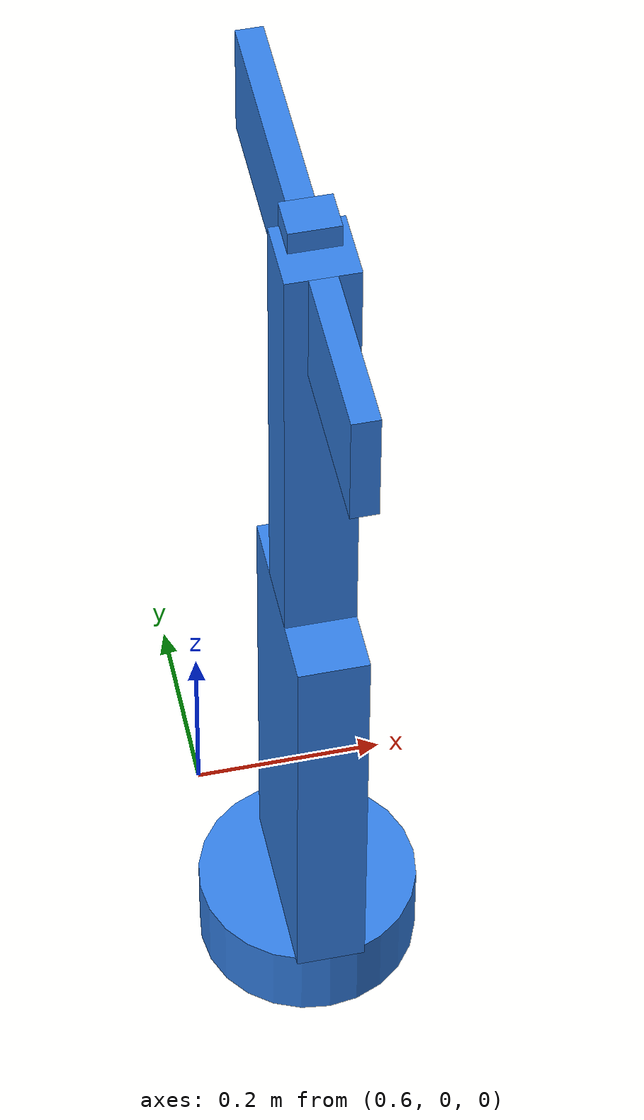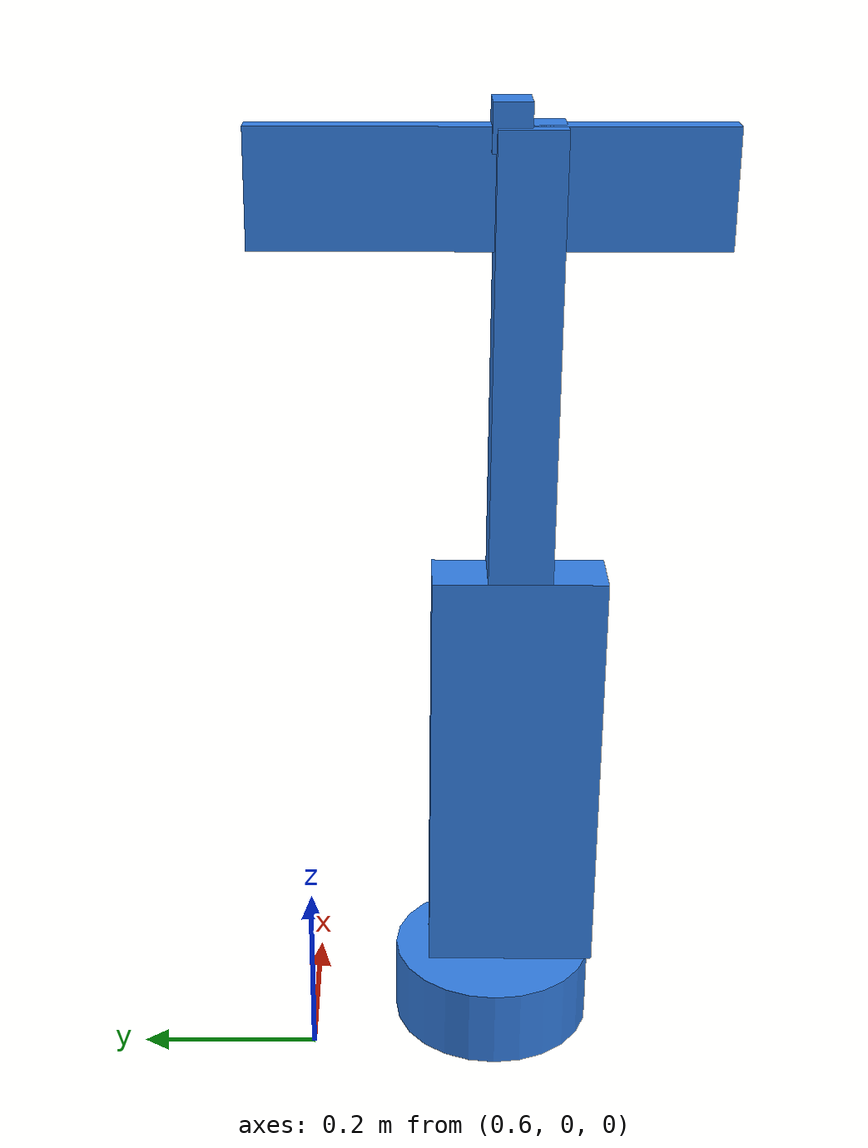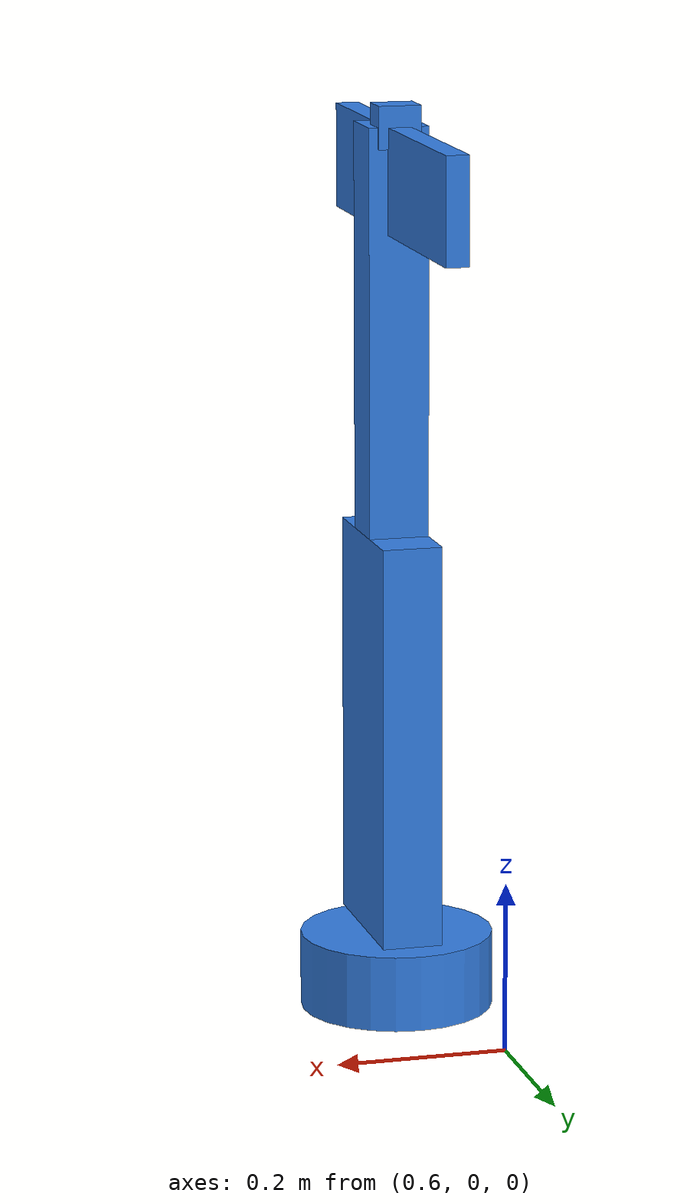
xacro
<?xml version="1.0"?>
<robot name="robot_arm" xmlns:xacro="http://www.ros.org/wiki/xacro">
  <!-- SI units. Lengths and frames follow homogeneous_transform.h. -->
  <!-- Wrist and hand thicknesses are provisional. -->
  <xacro:arg name="forearm_x" default="0.07025"/>
  <xacro:arg name="forearm_y" default="0.071"/>
  <xacro:arg name="upper_arm_x" default="0.191"/>
  <xacro:arg name="upper_arm_y" default="0.071"/>
  <xacro:arg name="base_radius" default="0.114"/>
  <xacro:arg name="wrist_width" default="0.050"/>
  <xacro:arg name="hand_x" default="0.027"/>
  <xacro:arg name="hand_y" default="0.492"/>
  <xacro:arg name="hand_z" default="0.124"/>
  <xacro:property name="upper_length" value="0.480"/>
  <xacro:property name="forearm_length" value="0.480"/>
  <material name="arm_blue"><color rgba="0.2 0.5 0.9 1"/></material>
  <xacro:macro name="box_body" params="size xyz rpy:='0 0 0'">
    <visual><origin xyz="${xyz}" rpy="${rpy}"/><geometry><box size="${size}"/></geometry><material name="arm_blue"/></visual>
    <collision><origin xyz="${xyz}" rpy="${rpy}"/><geometry><box size="${size}"/></geometry></collision>
  </xacro:macro>

  <link name="map"/>
  <joint name="field_to_base" type="fixed">
    <parent link="map"/><child link="base_link"/>
    <origin xyz="0.675 -0.190 0"/>
  </joint>
  <link name="base_link"/>
  <joint name="base_yaw_joint" type="continuous">
    <parent link="base_link"/><child link="base_yaw_link"/>
    <origin rpy="0 0 ${pi/2}"/><axis xyz="0 0 -1"/>
  </joint>
  <link name="base_yaw_link">
    <visual>
      <origin xyz="-0.020 0 0.045"/>
      <geometry><cylinder radius="$(arg base_radius)" length="0.090"/></geometry>
      <material name="arm_blue"/>
    </visual>
    <collision>
      <origin xyz="-0.020 0 0.045"/>
      <geometry><cylinder radius="$(arg base_radius)" length="0.090"/></geometry>
    </collision>
  </link>
  <joint name="shoulder_joint" type="continuous">
    <parent link="base_yaw_link"/><child link="upper_arm_link"/>
    <origin xyz="-0.040 0 0.090"/><axis xyz="0 1 0"/>
  </joint>
  <link name="upper_arm_link">
    <xacro:box_body size="$(arg upper_arm_x) $(arg upper_arm_y) ${upper_length}" xyz="0 0 ${upper_length/2}"/>
  </link>
  <joint name="elbow_joint" type="continuous">
    <parent link="upper_arm_link"/><child link="forearm_link"/>
    <origin xyz="0 0 ${upper_length}"/><axis xyz="0 1 0"/>
  </joint>
  <link name="forearm_link">
    <xacro:box_body size="$(arg forearm_x) $(arg forearm_y) ${forearm_length}" xyz="0 0 ${forearm_length/2}"/>
  </link>
  <!-- Dependent leveling joint: q = -theta3 (absolute forearm angle). -->
  <joint name="wrist_level_joint" type="continuous">
    <parent link="forearm_link"/><child link="wrist_link"/>
    <origin xyz="0 0 ${forearm_length}"/><axis xyz="0 1 0"/>
  </joint>
  <link name="wrist_link">
    <xacro:box_body size="0.040 $(arg wrist_width) $(arg wrist_width)" xyz="0.020 0 0"/>
  </link>
  <!-- q = 2*theta1 + theta4 - pi/2 gives field yaw theta1 + theta4. -->
  <joint name="flange_yaw_joint" type="continuous">
    <parent link="wrist_link"/><child link="flange_link"/>
    <origin xyz="0.040 0 0"/><axis xyz="0 0 1"/>
  </joint>
  <link name="flange_link">
    <xacro:box_body size="$(arg hand_x) $(arg hand_y) $(arg hand_z)" xyz="0 0 ${-float('$(arg hand_z)')/2}" rpy="0 0 ${pi/2}"/>
  </link>
</robot>
